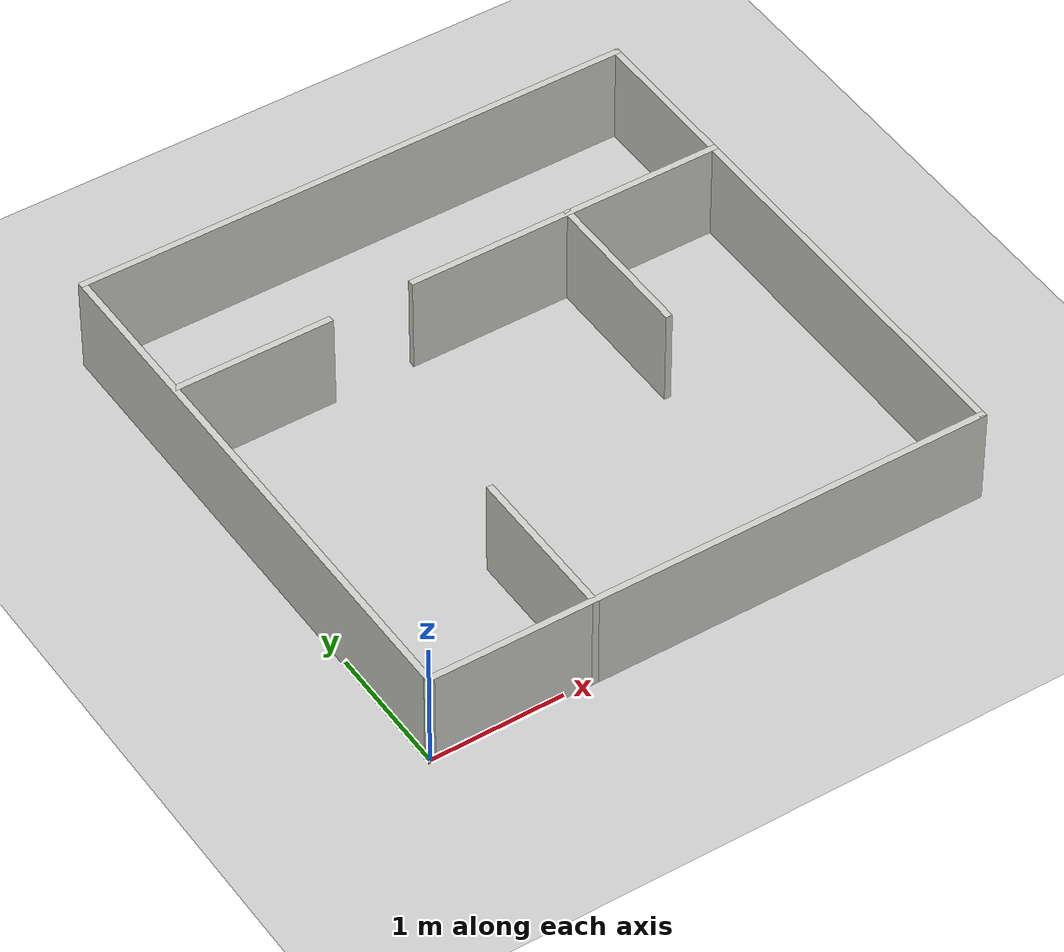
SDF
<sdf version="1.7">
 <world name="default">
  <light name="sun" type="directional">
   <pose>0 0 10 0 -0 0</pose>
   <diffuse>0.8 0.8 0.8 1</diffuse>
   <specular>0.2 0.2 0.2 1</specular>
   <attenuation>
    <range>1000</range>
    <constant>0.9</constant>
    <linear>0.01</linear>
    <quadratic>0.001</quadratic>
   </attenuation>
   <direction>-0.5 0.1 -0.9</direction>
   <spot><inner_angle>0</inner_angle><outer_angle>0</outer_angle><falloff>0</falloff></spot>
  </light>
  <model name="ground_plane">
   <static>1</static>
   <link name="link">
    <collision name="collision">
     <geometry><plane><normal>0 0 1</normal><size>100 100</size></plane></geometry>
     <surface><friction><ode><mu>100</mu><mu2>50</mu2></ode></friction></surface>
    </collision>
    <visual name="visual">
     <cast_shadows>0</cast_shadows>
     <geometry><plane><normal>0 0 1</normal><size>100 100</size></plane></geometry>
     <material>
      <script><uri>file://media/materials/scripts/gazebo.material</uri><name>Gazebo/Grey</name></script>
     </material>
    </visual>
   </link>
  </model>
  <gravity>0 0 -9.8</gravity>
  <magnetic_field>6e-06 2.3e-05 -4.2e-05</magnetic_field>
  <atmosphere type="adiabatic"/>
  <physics type="ode">
   <max_step_size>0.001</max_step_size>
   <real_time_factor>1</real_time_factor>
   <real_time_update_rate>1000</real_time_update_rate>
  </physics>
  <scene><ambient>0.4 0.4 0.4 1</ambient><background>0.7 0.7 0.7 1</background><shadows>1</shadows></scene>
  <audio><device>default</device></audio>
  <spherical_coordinates>
   <surface_model>EARTH_WGS84</surface_model>
   <latitude_deg>0</latitude_deg>
   <longitude_deg>0</longitude_deg>
   <elevation>0</elevation>
   <heading_deg>0</heading_deg>
  </spherical_coordinates>
  <model name="challenge_course">
   <pose>2.11 2.11 0 0 -0 0</pose>
   <link name="Wall_10">
    <collision name="Wall_10_Collision">
     <geometry><box><size>1.22 0.05 0.75</size></box></geometry>
     <pose>0 0 0.375 0 -0 0</pose>
    </collision>
    <visual name="Wall_10_Visual">
     <pose>0 0 0.375 0 -0 0</pose>
     <geometry><box><size>1.22 0.05 0.75</size></box></geometry>
     <material>
      <script><uri>file://media/materials/scripts/gazebo.material</uri><name>Gazebo/CeilingTiled</name></script>
      <ambient>1 1 1 1</ambient>
     </material>
     <meta><layer>0</layer></meta>
    </visual>
    <pose>-1.525 0.94 0 0 -0 0</pose>
   </link>
   <link name="Wall_12">
    <collision name="Wall_12_Collision">
     <geometry><box><size>2.44 0.05 0.75</size></box></geometry>
     <pose>0 0 0.375 0 -0 0</pose>
    </collision>
    <visual name="Wall_12_Visual">
     <pose>0 0 0.375 0 -0 0</pose>
     <geometry><box><size>2.44 0.05 0.75</size></box></geometry>
     <material>
      <script><uri>file://media/materials/scripts/gazebo.material</uri><name>Gazebo/CeilingTiled</name></script>
      <ambient>1 1 1 1</ambient>
     </material>
     <meta><layer>0</layer></meta>
    </visual>
    <pose>0.915 0.94 0 0 -0 3.14159</pose>
   </link>
   <link name="Wall_14">
    <collision name="Wall_14_Collision">
     <geometry><box><size>1.22 0.05 0.75</size></box></geometry>
     <pose>0 0 0.375 0 -0 0</pose>
    </collision>
    <visual name="Wall_14_Visual">
     <pose>0 0 0.375 0 -0 0</pose>
     <geometry><box><size>1.22 0.05 0.75</size></box></geometry>
     <material>
      <script><uri>file://media/materials/scripts/gazebo.material</uri><name>Gazebo/CeilingTiled</name></script>
      <ambient>1 1 1 1</ambient>
     </material>
     <meta><layer>0</layer></meta>
    </visual>
    <pose>0.94 0.355 0 0 -0 -1.5708</pose>
   </link>
   <link name="Wall_3">
    <collision name="Wall_3_Collision">
     <geometry><box><size>4.27 0.05 0.75</size></box></geometry>
     <pose>0 0 0.375 0 -0 0</pose>
    </collision>
    <visual name="Wall_3_Visual">
     <pose>0 0 0.375 0 -0 0</pose>
     <geometry><box><size>4.27 0.05 0.75</size></box></geometry>
     <material>
      <script><uri>file://media/materials/scripts/gazebo.material</uri><name>Gazebo/CeilingTiled</name></script>
      <ambient>1 1 1 1</ambient>
     </material>
     <meta><layer>0</layer></meta>
    </visual>
    <pose>-2.11 0 0 0 -0 1.5708</pose>
   </link>
   <link name="Wall_4">
    <collision name="Wall_4_Collision">
     <geometry><box><size>4.27 0.05 0.75</size></box></geometry>
     <pose>0 0 0.375 0 -0 0</pose>
    </collision>
    <visual name="Wall_4_Visual">
     <pose>0 0 0.375 0 -0 0</pose>
     <geometry><box><size>4.27 0.05 0.75</size></box></geometry>
     <material>
      <script><uri>file://media/materials/scripts/gazebo.material</uri><name>Gazebo/CeilingTiled</name></script>
      <ambient>1 1 1 1</ambient>
     </material>
     <meta><layer>0</layer></meta>
    </visual>
    <pose>0 2.11 0 0 -0 0</pose>
   </link>
   <link name="Wall_5">
    <collision name="Wall_5_Collision">
     <geometry><box><size>4.27 0.05 0.75</size></box></geometry>
     <pose>0 0 0.375 0 -0 0</pose>
    </collision>
    <visual name="Wall_5_Visual">
     <pose>0 0 0.375 0 -0 0</pose>
     <geometry><box><size>4.27 0.05 0.75</size></box></geometry>
     <material>
      <script><uri>file://media/materials/scripts/gazebo.material</uri><name>Gazebo/CeilingTiled</name></script>
      <ambient>1 1 1 1</ambient>
     </material>
     <meta><layer>0</layer></meta>
    </visual>
    <pose>2.11 0 0 0 -0 -1.5708</pose>
   </link>
   <link name="Wall_6">
    <collision name="Wall_6_Collision">
     <geometry><box><size>4.27 0.05 0.75</size></box></geometry>
     <pose>0 0 0.375 0 -0 0</pose>
    </collision>
    <visual name="Wall_6_Visual">
     <pose>0 0 0.375 0 -0 0</pose>
     <geometry><box><size>4.27 0.05 0.75</size></box></geometry>
     <material>
      <script><uri>file://media/materials/scripts/gazebo.material</uri><name>Gazebo/CeilingTiled</name></script>
      <ambient>1 1 1 1</ambient>
     </material>
     <meta><layer>0</layer></meta>
    </visual>
    <pose>0 -2.11 0 0 -0 3.14159</pose>
   </link>
   <link name="Wall_8">
    <collision name="Wall_8_Collision">
     <geometry><box><size>1.22 0.05 0.75</size></box></geometry>
     <pose>0 0 0.375 0 -0 0</pose>
    </collision>
    <visual name="Wall_8_Visual">
     <pose>0 0 0.375 0 -0 0</pose>
     <geometry><box><size>1.22 0.05 0.75</size></box></geometry>
     <material>
      <script><uri>file://media/materials/scripts/gazebo.material</uri><name>Gazebo/CeilingTiled</name></script>
      <ambient>1 1 1 1</ambient>
     </material>
     <meta><layer>0</layer></meta>
    </visual>
    <pose>-0.89 -1.525 0 0 -0 1.5708</pose>
   </link>
   <static>1</static>
  </model>
 </world>
</sdf>
